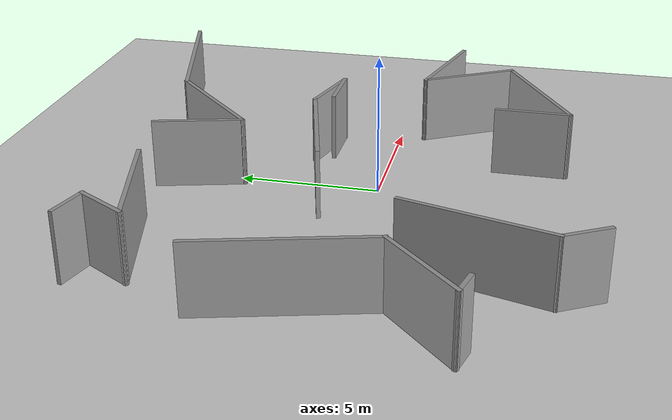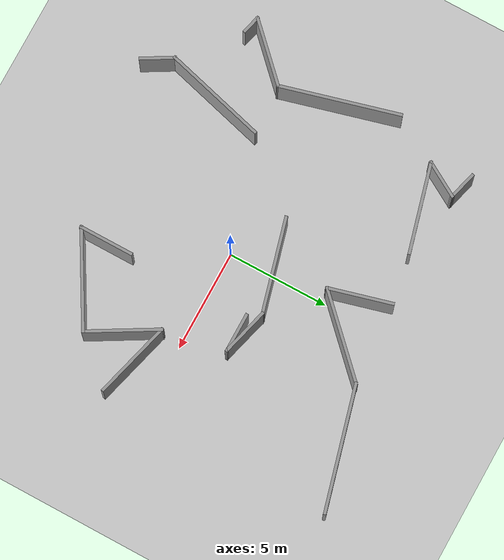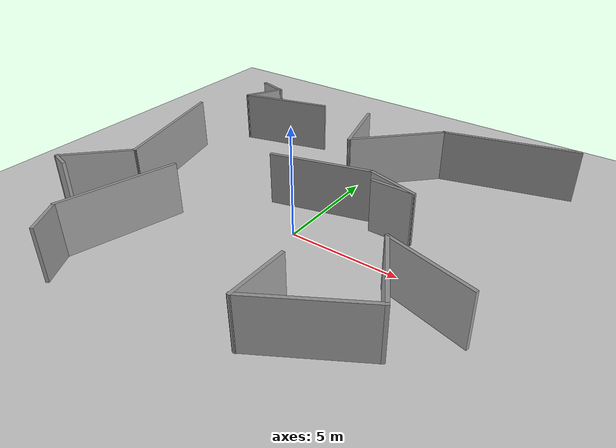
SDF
<sdf version="1.7">
 <world name="default">
  <light name="sun" type="directional">
   <pose>0 0 10 0 -0 0</pose>
   <diffuse>0.8 0.8 0.8 1</diffuse>
   <specular>0.2 0.2 0.2 1</specular>
   <attenuation>
    <range>1000</range>
    <constant>0.9</constant>
    <linear>0.01</linear>
    <quadratic>0.001</quadratic>
   </attenuation>
   <direction>-0.5 0.1 -0.9</direction>
   <spot><inner_angle>0</inner_angle><outer_angle>0</outer_angle><falloff>0</falloff></spot>
  </light>
  <model name="ground_plane">
   <static>1</static>
   <link name="link">
    <collision name="collision">
     <geometry><plane><normal>0 0 1</normal><size>100 100</size></plane></geometry>
     <surface>
      <contact><collide_bitmask>65535</collide_bitmask></contact>
      <friction><ode><mu>100</mu><mu2>50</mu2></ode></friction>
     </surface>
    </collision>
    <visual name="visual">
     <cast_shadows>0</cast_shadows>
     <geometry><plane><normal>0 0 1</normal><size>100 100</size></plane></geometry>
     <material>
      <script><uri>file://media/materials/scripts/gazebo.material</uri><name>Gazebo/Grey</name></script>
     </material>
    </visual>
   </link>
  </model>
  <gravity>0 0 -9.8</gravity>
  <magnetic_field>6e-06 2.3e-05 -4.2e-05</magnetic_field>
  <atmosphere type="adiabatic"/>
  <physics type="ode">
   <max_step_size>0.001</max_step_size>
   <real_time_factor>1</real_time_factor>
   <real_time_update_rate>1000</real_time_update_rate>
  </physics>
  <scene><ambient>0.4 0.4 0.4 1</ambient><background>0.7 0.7 0.7 1</background><shadows>1</shadows></scene>
  <spherical_coordinates>
   <surface_model>EARTH_WGS84</surface_model>
   <latitude_deg>0</latitude_deg>
   <longitude_deg>0</longitude_deg>
   <elevation>0</elevation>
   <heading_deg>0</heading_deg>
  </spherical_coordinates>
  <model name="gazebo_tao1">
   <pose>-0.626226 0.875858 0 0 -0 0</pose>
   <link name="Wall_42">
    <collision name="Wall_42_Collision">
     <geometry><box><size>4.75 0.15 2.5</size></box></geometry>
     <pose>0 0 1.25 0 -0 0</pose>
    </collision>
    <visual name="Wall_42_Visual">
     <pose>0 0 1.25 0 -0 0</pose>
     <geometry><box><size>4.75 0.15 2.5</size></box></geometry>
     <material>
      <script><uri>file://media/materials/scripts/gazebo.material</uri><name>Gazebo/Grey</name></script>
      <ambient>1 1 1 1</ambient>
     </material>
     <meta><layer>0</layer></meta>
    </visual>
    <pose>0.477856 1.31943 0 0 -0 0.261799</pose>
   </link>
   <link name="Wall_43">
    <collision name="Wall_43_Collision">
     <geometry><box><size>2.5 0.15 2.5</size></box></geometry>
     <pose>0 0 1.25 0 -0 0</pose>
    </collision>
    <visual name="Wall_43_Visual">
     <pose>0 0 1.25 0 -0 0</pose>
     <geometry><box><size>2.5 0.15 2.5</size></box></geometry>
     <material>
      <script><uri>file://media/materials/scripts/gazebo.material</uri><name>Gazebo/Grey</name></script>
      <ambient>1 1 1 1</ambient>
     </material>
     <meta><layer>0</layer></meta>
    </visual>
    <pose>3.83445 1.6106 0 0 -0 -0.261799</pose>
   </link>
   <link name="Wall_44">
    <collision name="Wall_44_Collision">
     <geometry><box><size>2 0.15 2.5</size></box></geometry>
     <pose>0 0 1.25 0 -0 0</pose>
    </collision>
    <visual name="Wall_44_Visual">
     <pose>0 0 1.25 0 -0 0</pose>
     <geometry><box><size>2 0.15 2.5</size></box></geometry>
     <material>
      <script><uri>file://media/materials/scripts/gazebo.material</uri><name>Gazebo/Grey</name></script>
      <ambient>1 1 1 1</ambient>
     </material>
     <meta><layer>0</layer></meta>
    </visual>
    <pose>4.04441 1.30648 0 0 -0 3.14159</pose>
   </link>
   <link name="Wall_46">
    <collision name="Wall_46_Collision">
     <geometry><box><size>4.5 0.15 2.5</size></box></geometry>
     <pose>0 0 1.25 0 -0 0</pose>
    </collision>
    <visual name="Wall_46_Visual">
     <pose>0 0 1.25 0 -0 0</pose>
     <geometry><box><size>4.5 0.15 2.5</size></box></geometry>
     <material>
      <script><uri>file://media/materials/scripts/gazebo.material</uri><name>Gazebo/Grey</name></script>
      <ambient>1 1 1 1</ambient>
     </material>
     <meta><layer>0</layer></meta>
    </visual>
    <pose>-5.09539 5.91951 0 0 -0 -2.87979</pose>
   </link>
   <link name="Wall_47">
    <collision name="Wall_47_Collision">
     <geometry><box><size>2 0.15 2.5</size></box></geometry>
     <pose>0 0 1.25 0 -0 0</pose>
    </collision>
    <visual name="Wall_47_Visual">
     <pose>0 0 1.25 0 -0 0</pose>
     <geometry><box><size>2 0.15 2.5</size></box></geometry>
     <material>
      <script><uri>file://media/materials/scripts/gazebo.material</uri><name>Gazebo/Grey</name></script>
      <ambient>1 1 1 1</ambient>
     </material>
     <meta><layer>0</layer></meta>
    </visual>
    <pose>-6.73378 6.15766 0 0 -0 1.0472</pose>
   </link>
   <link name="Wall_48">
    <collision name="Wall_48_Collision">
     <geometry><box><size>1.5 0.15 2.5</size></box></geometry>
     <pose>0 0 1.25 0 -0 0</pose>
    </collision>
    <visual name="Wall_48_Visual">
     <pose>0 0 1.25 0 -0 0</pose>
     <geometry><box><size>1.5 0.15 2.5</size></box></geometry>
     <material>
      <script><uri>file://media/materials/scripts/gazebo.material</uri><name>Gazebo/Grey</name></script>
      <ambient>1 1 1 1</ambient>
     </material>
     <meta><layer>0</layer></meta>
    </visual>
    <pose>-6.92328 7.13343 0 0 -0 2.87979</pose>
   </link>
   <link name="Wall_50">
    <collision name="Wall_50_Collision">
     <geometry><box><size>6 0.15 2.5</size></box></geometry>
     <pose>0 0 1.25 0 -0 0</pose>
    </collision>
    <visual name="Wall_50_Visual">
     <pose>0 0 1.25 0 -0 0</pose>
     <geometry><box><size>6 0.15 2.5</size></box></geometry>
     <material>
      <script><uri>file://media/materials/scripts/gazebo.material</uri><name>Gazebo/Grey</name></script>
      <ambient>1 1 1 1</ambient>
     </material>
     <meta><layer>0</layer></meta>
    </visual>
    <pose>-7.76432 0.264039 0 0 -0 -1.309</pose>
   </link>
   <link name="Wall_51">
    <collision name="Wall_51_Collision">
     <geometry><box><size>3.5 0.15 2.5</size></box></geometry>
     <pose>0 0 1.25 0 -0 0</pose>
    </collision>
    <visual name="Wall_51_Visual">
     <pose>0 0 1.25 0 -0 0</pose>
     <geometry><box><size>3.5 0.15 2.5</size></box></geometry>
     <material>
      <script><uri>file://media/materials/scripts/gazebo.material</uri><name>Gazebo/Grey</name></script>
      <ambient>1 1 1 1</ambient>
     </material>
     <meta><layer>0</layer></meta>
    </visual>
    <pose>-8.19167 -3.7457 0 0 -0 -2.35619</pose>
   </link>
   <link name="Wall_52">
    <collision name="Wall_52_Collision">
     <geometry><box><size>1 0.15 2.5</size></box></geometry>
     <pose>0 0 1.25 0 -0 0</pose>
    </collision>
    <visual name="Wall_52_Visual">
     <pose>0 0 1.25 0 -0 0</pose>
     <geometry><box><size>1 0.15 2.5</size></box></geometry>
     <material>
      <script><uri>file://media/materials/scripts/gazebo.material</uri><name>Gazebo/Grey</name></script>
      <ambient>1 1 1 1</ambient>
     </material>
     <meta><layer>0</layer></meta>
    </visual>
    <pose>-8.96556 -5.0401 0 0 -0 -0.261799</pose>
   </link>
   <link name="Wall_54">
    <collision name="Wall_54_Collision">
     <geometry><box><size>5.25 0.15 2.5</size></box></geometry>
     <pose>0 0 1.25 0 -0 0</pose>
    </collision>
    <visual name="Wall_54_Visual">
     <pose>0 0 1.25 0 -0 0</pose>
     <geometry><box><size>5.25 0.15 2.5</size></box></geometry>
     <material>
      <script><uri>file://media/materials/scripts/gazebo.material</uri><name>Gazebo/Grey</name></script>
      <ambient>1 1 1 1</ambient>
     </material>
     <meta><layer>0</layer></meta>
    </visual>
    <pose>-5.23385 -4.91965 0 0 -0 -1.8326</pose>
   </link>
   <link name="Wall_55">
    <collision name="Wall_55_Collision">
     <geometry><box><size>1.75 0.15 2.5</size></box></geometry>
     <pose>0 0 1.25 0 -0 0</pose>
    </collision>
    <visual name="Wall_55_Visual">
     <pose>0 0 1.25 0 -0 0</pose>
     <geometry><box><size>1.75 0.15 2.5</size></box></geometry>
     <material>
      <script><uri>file://media/materials/scripts/gazebo.material</uri><name>Gazebo/Grey</name></script>
      <ambient>1 1 1 1</ambient>
     </material>
     <meta><layer>0</layer></meta>
    </visual>
    <pose>-5.49384 -8.07558 0 0 -0 -1.0472</pose>
   </link>
   <link name="Wall_57">
    <collision name="Wall_57_Collision">
     <geometry><box><size>6.25 0.15 2.5</size></box></geometry>
     <pose>0 0 1.25 0 -0 0</pose>
    </collision>
    <visual name="Wall_57_Visual">
     <pose>0 0 1.25 0 -0 0</pose>
     <geometry><box><size>6.25 0.15 2.5</size></box></geometry>
     <material>
      <script><uri>file://media/materials/scripts/gazebo.material</uri><name>Gazebo/Grey</name></script>
      <ambient>1 1 1 1</ambient>
     </material>
     <meta><layer>0</layer></meta>
    </visual>
    <pose>6.44421 7.98959 0 0 -0 -2.87979</pose>
   </link>
   <link name="Wall_58">
    <collision name="Wall_58_Collision">
     <geometry><box><size>4.75 0.15 2.5</size></box></geometry>
     <pose>0 0 1.25 0 -0 0</pose>
    </collision>
    <visual name="Wall_58_Visual">
     <pose>0 0 1.25 0 -0 0</pose>
     <geometry><box><size>4.75 0.15 2.5</size></box></geometry>
     <material>
      <script><uri>file://media/materials/scripts/gazebo.material</uri><name>Gazebo/Grey</name></script>
      <ambient>1 1 1 1</ambient>
     </material>
     <meta><layer>0</layer></meta>
    </visual>
    <pose>1.8718 5.57385 0 0 -0 -2.35619</pose>
   </link>
   <link name="Wall_59">
    <collision name="Wall_59_Collision">
     <geometry><box><size>3.25 0.15 2.5</size></box></geometry>
     <pose>0 0 1.25 0 -0 0</pose>
    </collision>
    <visual name="Wall_59_Visual">
     <pose>0 0 1.25 0 -0 0</pose>
     <geometry><box><size>3.25 0.15 2.5</size></box></geometry>
     <material>
      <script><uri>file://media/materials/scripts/gazebo.material</uri><name>Gazebo/Grey</name></script>
      <ambient>1 1 1 1</ambient>
     </material>
     <meta><layer>0</layer></meta>
    </visual>
    <pose>-0.15572 5.44469 0 0 -0 1.8326</pose>
   </link>
   <link name="Wall_61">
    <collision name="Wall_61_Collision">
     <geometry><box><size>2.75 0.15 2.5</size></box></geometry>
     <pose>0 0 1.25 0 -0 0</pose>
    </collision>
    <visual name="Wall_61_Visual">
     <pose>0 0 1.25 0 -0 0</pose>
     <geometry><box><size>2.75 0.15 2.5</size></box></geometry>
     <material>
      <script><uri>file://media/materials/scripts/gazebo.material</uri><name>Gazebo/Grey</name></script>
      <ambient>1 1 1 1</ambient>
     </material>
     <meta><layer>0</layer></meta>
    </visual>
    <pose>3.15391 -6.01444 0 0 -0 -1.5708</pose>
   </link>
   <link name="Wall_62">
    <collision name="Wall_62_Collision">
     <geometry><box><size>5 0.15 2.5</size></box></geometry>
     <pose>0 0 1.25 0 -0 0</pose>
    </collision>
    <visual name="Wall_62_Visual">
     <pose>0 0 1.25 0 -0 0</pose>
     <geometry><box><size>5 0.15 2.5</size></box></geometry>
     <material>
      <script><uri>file://media/materials/scripts/gazebo.material</uri><name>Gazebo/Grey</name></script>
      <ambient>1 1 1 1</ambient>
     </material>
     <meta><layer>0</layer></meta>
    </visual>
    <pose>5.25402 -6.10194 0 0 -0 0.523599</pose>
   </link>
   <link name="Wall_63">
    <collision name="Wall_63_Collision">
     <geometry><box><size>3.75 0.15 2.5</size></box></geometry>
     <pose>0 0 1.25 0 -0 0</pose>
    </collision>
    <visual name="Wall_63_Visual">
     <pose>0 0 1.25 0 -0 0</pose>
     <geometry><box><size>3.75 0.15 2.5</size></box></geometry>
     <material>
      <script><uri>file://media/materials/scripts/gazebo.material</uri><name>Gazebo/Grey</name></script>
      <ambient>1 1 1 1</ambient>
     </material>
     <meta><layer>0</layer></meta>
    </visual>
    <pose>6.45413 -3.3306 0 0 -0 2.0944</pose>
   </link>
   <link name="Wall_64">
    <collision name="Wall_64_Collision">
     <geometry><box><size>4 0.15 2.5</size></box></geometry>
     <pose>0 0 1.25 0 -0 0</pose>
    </collision>
    <visual name="Wall_64_Visual">
     <pose>0 0 1.25 0 -0 0</pose>
     <geometry><box><size>4 0.15 2.5</size></box></geometry>
     <material>
      <script><uri>file://media/materials/scripts/gazebo.material</uri><name>Gazebo/Grey</name></script>
      <ambient>1 1 1 1</ambient>
     </material>
     <meta><layer>0</layer></meta>
    </visual>
    <pose>7.41354 -2.26998 0 0 -0 -0.261799</pose>
   </link>
   <static>1</static>
  </model>
 </world>
</sdf>
